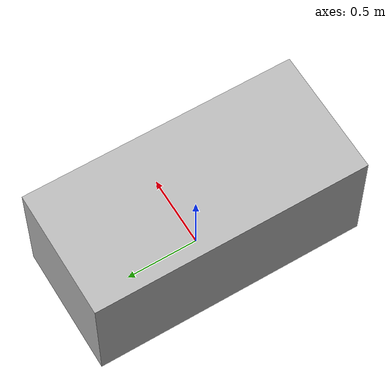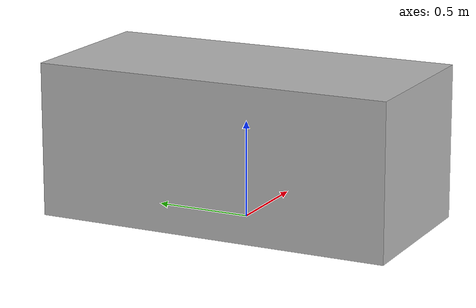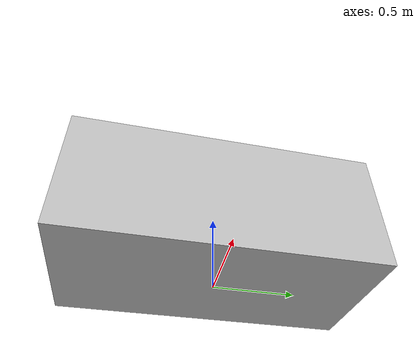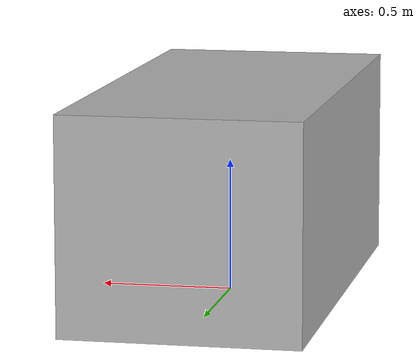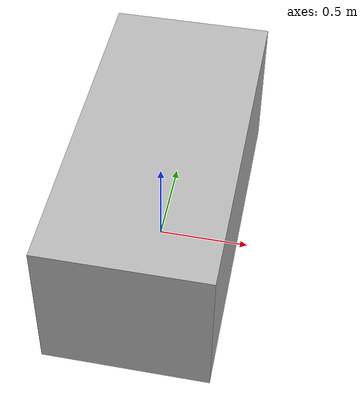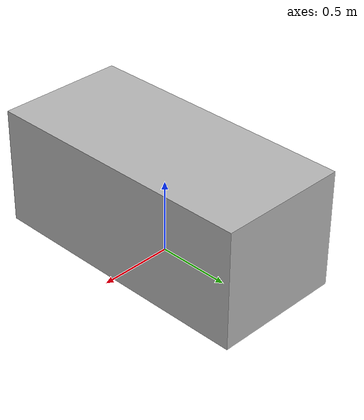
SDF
<?xml version='1.0'?>
<sdf version="1.4">
  <model name="panda_table">
    <static>true</static>
    <link name="link">
      <pose>0 0 0.4 0 0 0</pose>
      <collision name="collision">
        <geometry>
          <box>
            <size>0.88 1.88 0.8</size>
          </box>
        </geometry>
      </collision>
      <visual name="visual">
        <geometry>
          <box>
            <size>0.88 1.88 0.8</size>
          </box>
        </geometry>
      </visual>
    </link>
  </model>
</sdf>
